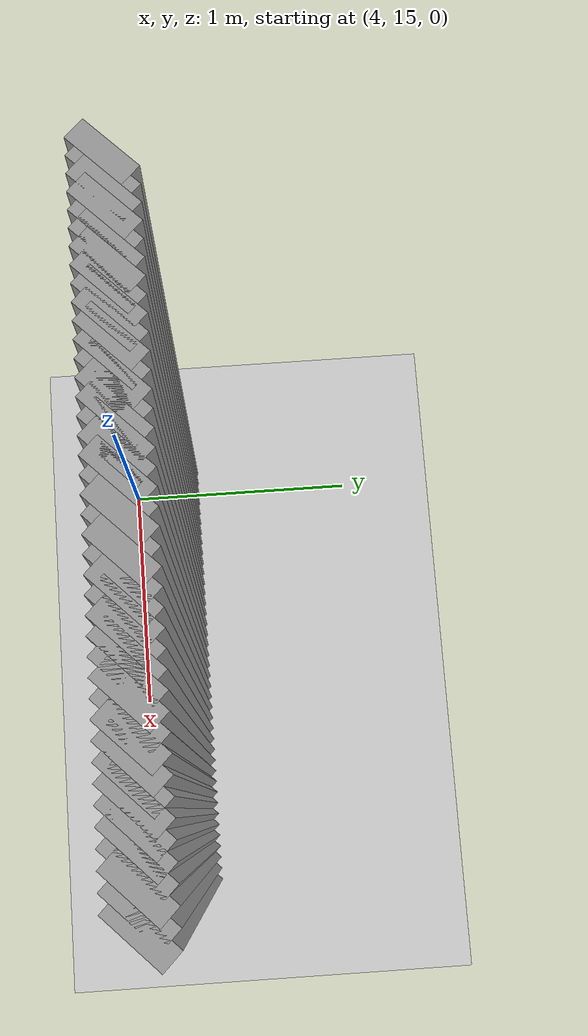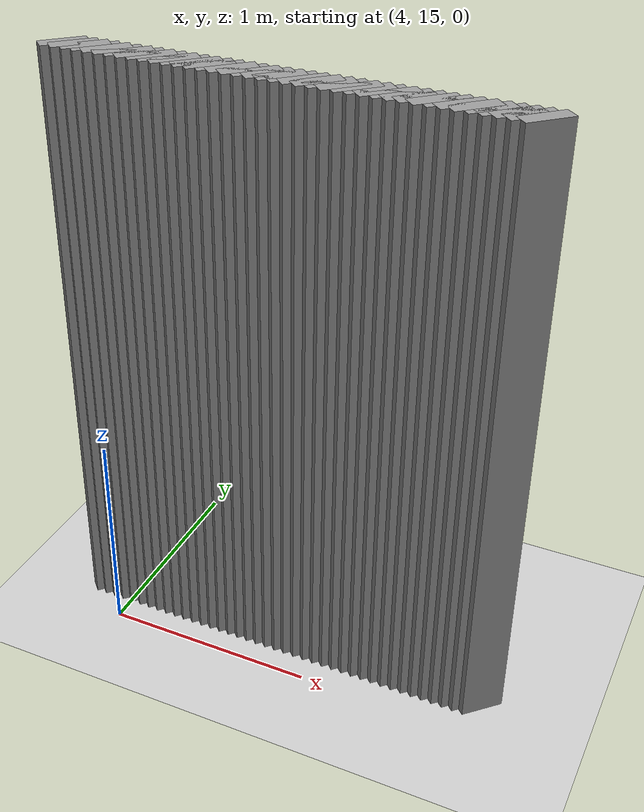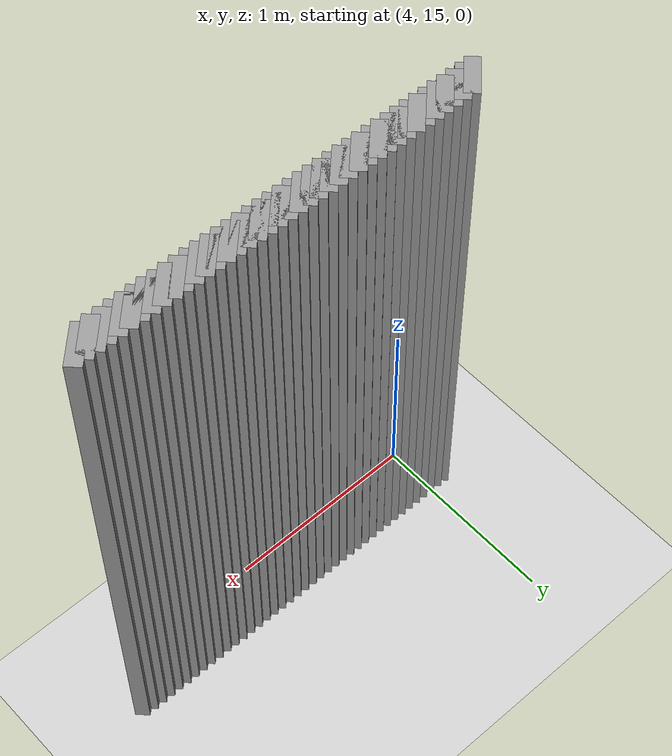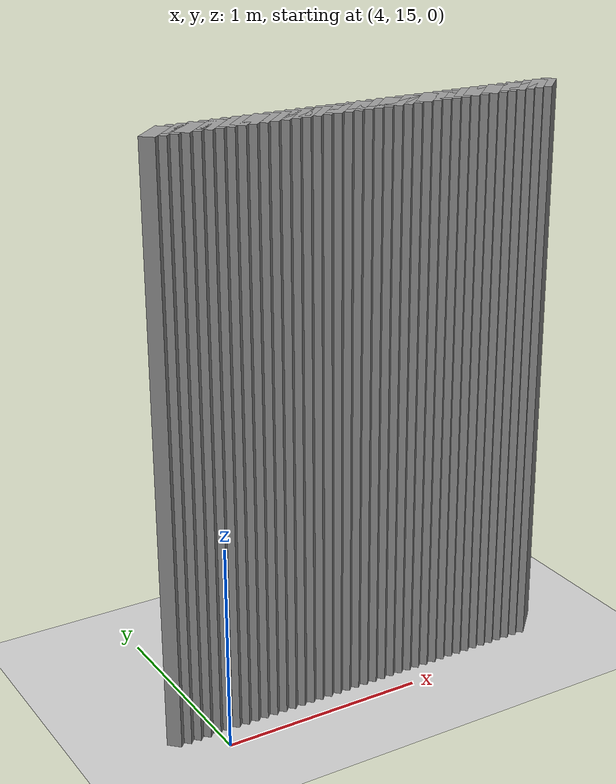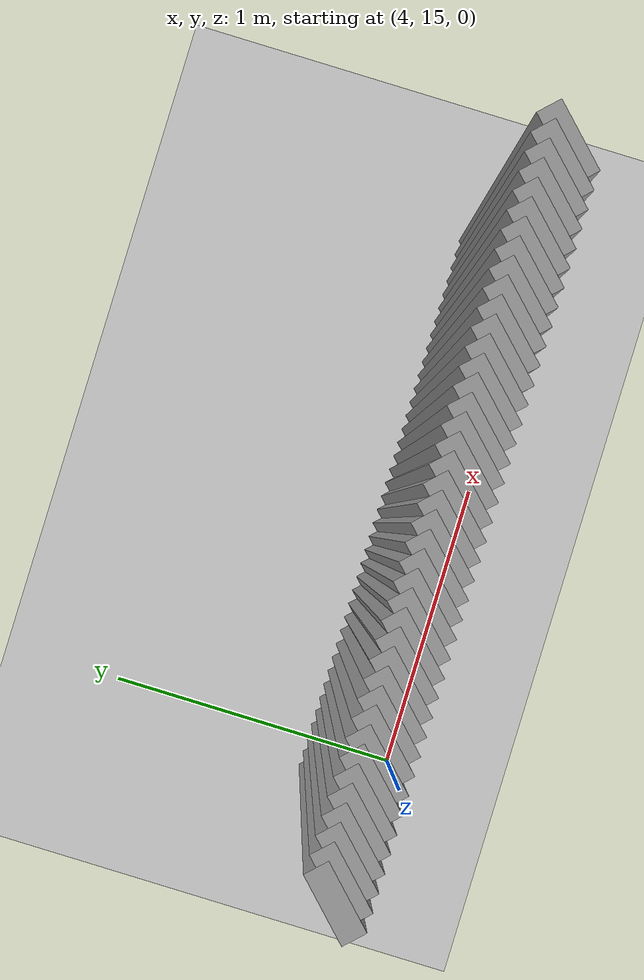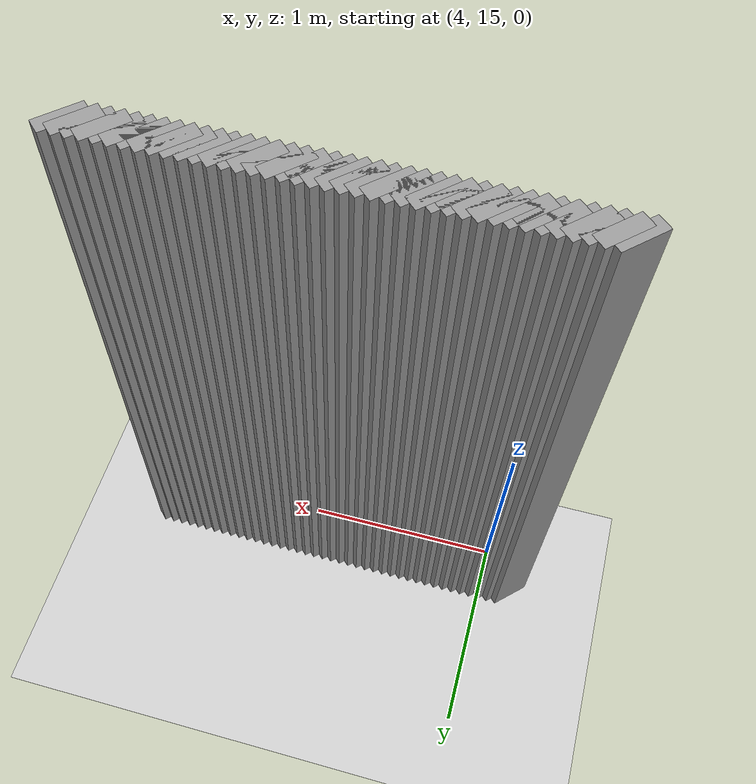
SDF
<sdf version="1.5">
 <world name="default">
  <include><uri>model://ground_plane</uri></include>
  <include><uri>model://sun</uri></include>
  <model name="grey_wall_1497">
   <static>1</static>
   <link name="link">
    <pose>3.85 15.2  1.4 0 0 -0.785398163397</pose>
    <collision name="collision"><geometry><box><size>0.0707106781187 .2  2.8</size></box></geometry></collision>
    <visual name="visual">
     <cast_shadows>0</cast_shadows>
     <geometry><box><size>0.0707106781187 .2  2.8</size></box></geometry>
     <material>
      <script>
       <uri>model://grey_wall/materials/scripts</uri>
       <uri>model://grey_wall/materials/textures</uri>
       <name>vrc/grey_wall</name>
      </script>
     </material>
    </visual>
   </link>
  </model>
  <model name="grey_wall_1498">
   <static>1</static>
   <link name="link">
    <pose>3.9 15.2  1.4 0 0 -0.785398163397</pose>
    <collision name="collision"><geometry><box><size>0.0707106781187 .2  2.8</size></box></geometry></collision>
    <visual name="visual">
     <cast_shadows>0</cast_shadows>
     <geometry><box><size>0.0707106781187 .2  2.8</size></box></geometry>
     <material>
      <script>
       <uri>model://grey_wall/materials/scripts</uri>
       <uri>model://grey_wall/materials/textures</uri>
       <name>vrc/grey_wall</name>
      </script>
     </material>
    </visual>
   </link>
  </model>
  <model name="grey_wall_1499">
   <static>1</static>
   <link name="link">
    <pose>3.95 15.2  1.4 0 0 -0.785398163397</pose>
    <collision name="collision"><geometry><box><size>0.0707106781187 .2  2.8</size></box></geometry></collision>
    <visual name="visual">
     <cast_shadows>0</cast_shadows>
     <geometry><box><size>0.0707106781187 .2  2.8</size></box></geometry>
     <material>
      <script>
       <uri>model://grey_wall/materials/scripts</uri>
       <uri>model://grey_wall/materials/textures</uri>
       <name>vrc/grey_wall</name>
      </script>
     </material>
    </visual>
   </link>
  </model>
  <model name="grey_wall_1500">
   <static>1</static>
   <link name="link">
    <pose>4.0 15.2  1.4 0 0 -0.785398163397</pose>
    <collision name="collision"><geometry><box><size>0.0707106781187 .2  2.8</size></box></geometry></collision>
    <visual name="visual">
     <cast_shadows>0</cast_shadows>
     <geometry><box><size>0.0707106781187 .2  2.8</size></box></geometry>
     <material>
      <script>
       <uri>model://grey_wall/materials/scripts</uri>
       <uri>model://grey_wall/materials/textures</uri>
       <name>vrc/grey_wall</name>
      </script>
     </material>
    </visual>
   </link>
  </model>
  <model name="grey_wall_1501">
   <static>1</static>
   <link name="link">
    <pose>4.05 15.2  1.4 0 0 -0.785398163397</pose>
    <collision name="collision"><geometry><box><size>0.0707106781187 .2  2.8</size></box></geometry></collision>
    <visual name="visual">
     <cast_shadows>0</cast_shadows>
     <geometry><box><size>0.0707106781187 .2  2.8</size></box></geometry>
     <material>
      <script>
       <uri>model://grey_wall/materials/scripts</uri>
       <uri>model://grey_wall/materials/textures</uri>
       <name>vrc/grey_wall</name>
      </script>
     </material>
    </visual>
   </link>
  </model>
  <model name="grey_wall_1502">
   <static>1</static>
   <link name="link">
    <pose>4.1 15.2  1.4 0 0 -0.785398163397</pose>
    <collision name="collision"><geometry><box><size>0.0707106781187 .2  2.8</size></box></geometry></collision>
    <visual name="visual">
     <cast_shadows>0</cast_shadows>
     <geometry><box><size>0.0707106781187 .2  2.8</size></box></geometry>
     <material>
      <script>
       <uri>model://grey_wall/materials/scripts</uri>
       <uri>model://grey_wall/materials/textures</uri>
       <name>vrc/grey_wall</name>
      </script>
     </material>
    </visual>
   </link>
  </model>
  <model name="grey_wall_1503">
   <static>1</static>
   <link name="link">
    <pose>4.15 15.2  1.4 0 0 -0.785398163397</pose>
    <collision name="collision"><geometry><box><size>0.0707106781187 .2  2.8</size></box></geometry></collision>
    <visual name="visual">
     <cast_shadows>0</cast_shadows>
     <geometry><box><size>0.0707106781187 .2  2.8</size></box></geometry>
     <material>
      <script>
       <uri>model://grey_wall/materials/scripts</uri>
       <uri>model://grey_wall/materials/textures</uri>
       <name>vrc/grey_wall</name>
      </script>
     </material>
    </visual>
   </link>
  </model>
  <model name="grey_wall_1504">
   <static>1</static>
   <link name="link">
    <pose>4.2 15.2  1.4 0 0 -0.785398163397</pose>
    <collision name="collision"><geometry><box><size>0.0707106781187 .2  2.8</size></box></geometry></collision>
    <visual name="visual">
     <cast_shadows>0</cast_shadows>
     <geometry><box><size>0.0707106781187 .2  2.8</size></box></geometry>
     <material>
      <script>
       <uri>model://grey_wall/materials/scripts</uri>
       <uri>model://grey_wall/materials/textures</uri>
       <name>vrc/grey_wall</name>
      </script>
     </material>
    </visual>
   </link>
  </model>
  <model name="grey_wall_1505">
   <static>1</static>
   <link name="link">
    <pose>4.25 15.2  1.4 0 0 -0.785398163397</pose>
    <collision name="collision"><geometry><box><size>0.0707106781187 .2  2.8</size></box></geometry></collision>
    <visual name="visual">
     <cast_shadows>0</cast_shadows>
     <geometry><box><size>0.0707106781187 .2  2.8</size></box></geometry>
     <material>
      <script>
       <uri>model://grey_wall/materials/scripts</uri>
       <uri>model://grey_wall/materials/textures</uri>
       <name>vrc/grey_wall</name>
      </script>
     </material>
    </visual>
   </link>
  </model>
  <model name="grey_wall_1506">
   <static>1</static>
   <link name="link">
    <pose>4.3 15.2  1.4 0 0 -0.785398163397</pose>
    <collision name="collision"><geometry><box><size>0.0707106781187 .2  2.8</size></box></geometry></collision>
    <visual name="visual">
     <cast_shadows>0</cast_shadows>
     <geometry><box><size>0.0707106781187 .2  2.8</size></box></geometry>
     <material>
      <script>
       <uri>model://grey_wall/materials/scripts</uri>
       <uri>model://grey_wall/materials/textures</uri>
       <name>vrc/grey_wall</name>
      </script>
     </material>
    </visual>
   </link>
  </model>
  <model name="grey_wall_1507">
   <static>1</static>
   <link name="link">
    <pose>4.35 15.2  1.4 0 0 -0.785398163397</pose>
    <collision name="collision"><geometry><box><size>0.0707106781187 .2  2.8</size></box></geometry></collision>
    <visual name="visual">
     <cast_shadows>0</cast_shadows>
     <geometry><box><size>0.0707106781187 .2  2.8</size></box></geometry>
     <material>
      <script>
       <uri>model://grey_wall/materials/scripts</uri>
       <uri>model://grey_wall/materials/textures</uri>
       <name>vrc/grey_wall</name>
      </script>
     </material>
    </visual>
   </link>
  </model>
  <model name="grey_wall_1508">
   <static>1</static>
   <link name="link">
    <pose>4.4 15.2  1.4 0 0 -0.785398163397</pose>
    <collision name="collision"><geometry><box><size>0.0707106781187 .2  2.8</size></box></geometry></collision>
    <visual name="visual">
     <cast_shadows>0</cast_shadows>
     <geometry><box><size>0.0707106781187 .2  2.8</size></box></geometry>
     <material>
      <script>
       <uri>model://grey_wall/materials/scripts</uri>
       <uri>model://grey_wall/materials/textures</uri>
       <name>vrc/grey_wall</name>
      </script>
     </material>
    </visual>
   </link>
  </model>
  <model name="grey_wall_1509">
   <static>1</static>
   <link name="link">
    <pose>4.45 15.2  1.4 0 0 -0.785398163397</pose>
    <collision name="collision"><geometry><box><size>0.0707106781187 .2  2.8</size></box></geometry></collision>
    <visual name="visual">
     <cast_shadows>0</cast_shadows>
     <geometry><box><size>0.0707106781187 .2  2.8</size></box></geometry>
     <material>
      <script>
       <uri>model://grey_wall/materials/scripts</uri>
       <uri>model://grey_wall/materials/textures</uri>
       <name>vrc/grey_wall</name>
      </script>
     </material>
    </visual>
   </link>
  </model>
  <model name="grey_wall_1510">
   <static>1</static>
   <link name="link">
    <pose>4.5 15.2  1.4 0 0 -0.785398163397</pose>
    <collision name="collision"><geometry><box><size>0.0707106781187 .2  2.8</size></box></geometry></collision>
    <visual name="visual">
     <cast_shadows>0</cast_shadows>
     <geometry><box><size>0.0707106781187 .2  2.8</size></box></geometry>
     <material>
      <script>
       <uri>model://grey_wall/materials/scripts</uri>
       <uri>model://grey_wall/materials/textures</uri>
       <name>vrc/grey_wall</name>
      </script>
     </material>
    </visual>
   </link>
  </model>
  <model name="grey_wall_1511">
   <static>1</static>
   <link name="link">
    <pose>4.55 15.2  1.4 0 0 -0.785398163397</pose>
    <collision name="collision"><geometry><box><size>0.0707106781187 .2  2.8</size></box></geometry></collision>
    <visual name="visual">
     <cast_shadows>0</cast_shadows>
     <geometry><box><size>0.0707106781187 .2  2.8</size></box></geometry>
     <material>
      <script>
       <uri>model://grey_wall/materials/scripts</uri>
       <uri>model://grey_wall/materials/textures</uri>
       <name>vrc/grey_wall</name>
      </script>
     </material>
    </visual>
   </link>
  </model>
  <model name="grey_wall_1512">
   <static>1</static>
   <link name="link">
    <pose>4.6 15.2  1.4 0 0 -0.785398163397</pose>
    <collision name="collision"><geometry><box><size>0.0707106781187 .2  2.8</size></box></geometry></collision>
    <visual name="visual">
     <cast_shadows>0</cast_shadows>
     <geometry><box><size>0.0707106781187 .2  2.8</size></box></geometry>
     <material>
      <script>
       <uri>model://grey_wall/materials/scripts</uri>
       <uri>model://grey_wall/materials/textures</uri>
       <name>vrc/grey_wall</name>
      </script>
     </material>
    </visual>
   </link>
  </model>
  <model name="grey_wall_1513">
   <static>1</static>
   <link name="link">
    <pose>4.65 15.2  1.4 0 0 -0.785398163397</pose>
    <collision name="collision"><geometry><box><size>0.0707106781187 .2  2.8</size></box></geometry></collision>
    <visual name="visual">
     <cast_shadows>0</cast_shadows>
     <geometry><box><size>0.0707106781187 .2  2.8</size></box></geometry>
     <material>
      <script>
       <uri>model://grey_wall/materials/scripts</uri>
       <uri>model://grey_wall/materials/textures</uri>
       <name>vrc/grey_wall</name>
      </script>
     </material>
    </visual>
   </link>
  </model>
  <model name="grey_wall_1514">
   <static>1</static>
   <link name="link">
    <pose>4.7 15.2  1.4 0 0 -0.785398163397</pose>
    <collision name="collision"><geometry><box><size>0.0707106781187 .2  2.8</size></box></geometry></collision>
    <visual name="visual">
     <cast_shadows>0</cast_shadows>
     <geometry><box><size>0.0707106781187 .2  2.8</size></box></geometry>
     <material>
      <script>
       <uri>model://grey_wall/materials/scripts</uri>
       <uri>model://grey_wall/materials/textures</uri>
       <name>vrc/grey_wall</name>
      </script>
     </material>
    </visual>
   </link>
  </model>
  <model name="grey_wall_1515">
   <static>1</static>
   <link name="link">
    <pose>4.75 15.2  1.4 0 0 -0.785398163397</pose>
    <collision name="collision"><geometry><box><size>0.0707106781187 .2  2.8</size></box></geometry></collision>
    <visual name="visual">
     <cast_shadows>0</cast_shadows>
     <geometry><box><size>0.0707106781187 .2  2.8</size></box></geometry>
     <material>
      <script>
       <uri>model://grey_wall/materials/scripts</uri>
       <uri>model://grey_wall/materials/textures</uri>
       <name>vrc/grey_wall</name>
      </script>
     </material>
    </visual>
   </link>
  </model>
  <model name="grey_wall_1516">
   <static>1</static>
   <link name="link">
    <pose>4.8 15.2  1.4 0 0 -0.785398163397</pose>
    <collision name="collision"><geometry><box><size>0.0707106781187 .2  2.8</size></box></geometry></collision>
    <visual name="visual">
     <cast_shadows>0</cast_shadows>
     <geometry><box><size>0.0707106781187 .2  2.8</size></box></geometry>
     <material>
      <script>
       <uri>model://grey_wall/materials/scripts</uri>
       <uri>model://grey_wall/materials/textures</uri>
       <name>vrc/grey_wall</name>
      </script>
     </material>
    </visual>
   </link>
  </model>
  <model name="grey_wall_1517">
   <static>1</static>
   <link name="link">
    <pose>4.85 15.2  1.4 0 0 -0.785398163397</pose>
    <collision name="collision"><geometry><box><size>0.0707106781187 .2  2.8</size></box></geometry></collision>
    <visual name="visual">
     <cast_shadows>0</cast_shadows>
     <geometry><box><size>0.0707106781187 .2  2.8</size></box></geometry>
     <material>
      <script>
       <uri>model://grey_wall/materials/scripts</uri>
       <uri>model://grey_wall/materials/textures</uri>
       <name>vrc/grey_wall</name>
      </script>
     </material>
    </visual>
   </link>
  </model>
  <model name="grey_wall_1518">
   <static>1</static>
   <link name="link">
    <pose>4.9 15.2  1.4 0 0 -0.785398163397</pose>
    <collision name="collision"><geometry><box><size>0.0707106781187 .2  2.8</size></box></geometry></collision>
    <visual name="visual">
     <cast_shadows>0</cast_shadows>
     <geometry><box><size>0.0707106781187 .2  2.8</size></box></geometry>
     <material>
      <script>
       <uri>model://grey_wall/materials/scripts</uri>
       <uri>model://grey_wall/materials/textures</uri>
       <name>vrc/grey_wall</name>
      </script>
     </material>
    </visual>
   </link>
  </model>
  <model name="grey_wall_1519">
   <static>1</static>
   <link name="link">
    <pose>4.95 15.2  1.4 0 0 -0.785398163397</pose>
    <collision name="collision"><geometry><box><size>0.0707106781187 .2  2.8</size></box></geometry></collision>
    <visual name="visual">
     <cast_shadows>0</cast_shadows>
     <geometry><box><size>0.0707106781187 .2  2.8</size></box></geometry>
     <material>
      <script>
       <uri>model://grey_wall/materials/scripts</uri>
       <uri>model://grey_wall/materials/textures</uri>
       <name>vrc/grey_wall</name>
      </script>
     </material>
    </visual>
   </link>
  </model>
  <model name="grey_wall_1520">
   <static>1</static>
   <link name="link">
    <pose>5.0 15.2  1.4 0 0 -0.785398163397</pose>
    <collision name="collision"><geometry><box><size>0.0707106781187 .2  2.8</size></box></geometry></collision>
    <visual name="visual">
     <cast_shadows>0</cast_shadows>
     <geometry><box><size>0.0707106781187 .2  2.8</size></box></geometry>
     <material>
      <script>
       <uri>model://grey_wall/materials/scripts</uri>
       <uri>model://grey_wall/materials/textures</uri>
       <name>vrc/grey_wall</name>
      </script>
     </material>
    </visual>
   </link>
  </model>
  <model name="grey_wall_1521">
   <static>1</static>
   <link name="link">
    <pose>5.05 15.2  1.4 0 0 -0.785398163397</pose>
    <collision name="collision"><geometry><box><size>0.0707106781187 .2  2.8</size></box></geometry></collision>
    <visual name="visual">
     <cast_shadows>0</cast_shadows>
     <geometry><box><size>0.0707106781187 .2  2.8</size></box></geometry>
     <material>
      <script>
       <uri>model://grey_wall/materials/scripts</uri>
       <uri>model://grey_wall/materials/textures</uri>
       <name>vrc/grey_wall</name>
      </script>
     </material>
    </visual>
   </link>
  </model>
  <model name="grey_wall_1522">
   <static>1</static>
   <link name="link">
    <pose>5.1 15.2  1.4 0 0 -0.785398163397</pose>
    <collision name="collision"><geometry><box><size>0.0707106781187 .2  2.8</size></box></geometry></collision>
    <visual name="visual">
     <cast_shadows>0</cast_shadows>
     <geometry><box><size>0.0707106781187 .2  2.8</size></box></geometry>
     <material>
      <script>
       <uri>model://grey_wall/materials/scripts</uri>
       <uri>model://grey_wall/materials/textures</uri>
       <name>vrc/grey_wall</name>
      </script>
     </material>
    </visual>
   </link>
  </model>
  <model name="grey_wall_1523">
   <static>1</static>
   <link name="link">
    <pose>5.15 15.2  1.4 0 0 -0.785398163397</pose>
    <collision name="collision"><geometry><box><size>0.0707106781187 .2  2.8</size></box></geometry></collision>
    <visual name="visual">
     <cast_shadows>0</cast_shadows>
     <geometry><box><size>0.0707106781187 .2  2.8</size></box></geometry>
     <material>
      <script>
       <uri>model://grey_wall/materials/scripts</uri>
       <uri>model://grey_wall/materials/textures</uri>
       <name>vrc/grey_wall</name>
      </script>
     </material>
    </visual>
   </link>
  </model>
  <model name="grey_wall_1524">
   <static>1</static>
   <link name="link">
    <pose>5.2 15.2  1.4 0 0 -0.785398163397</pose>
    <collision name="collision"><geometry><box><size>0.0707106781187 .2  2.8</size></box></geometry></collision>
    <visual name="visual">
     <cast_shadows>0</cast_shadows>
     <geometry><box><size>0.0707106781187 .2  2.8</size></box></geometry>
     <material>
      <script>
       <uri>model://grey_wall/materials/scripts</uri>
       <uri>model://grey_wall/materials/textures</uri>
       <name>vrc/grey_wall</name>
      </script>
     </material>
    </visual>
   </link>
  </model>
  <model name="grey_wall_1525">
   <static>1</static>
   <link name="link">
    <pose>5.25 15.2  1.4 0 0 -0.785398163397</pose>
    <collision name="collision"><geometry><box><size>0.0707106781187 .2  2.8</size></box></geometry></collision>
    <visual name="visual">
     <cast_shadows>0</cast_shadows>
     <geometry><box><size>0.0707106781187 .2  2.8</size></box></geometry>
     <material>
      <script>
       <uri>model://grey_wall/materials/scripts</uri>
       <uri>model://grey_wall/materials/textures</uri>
       <name>vrc/grey_wall</name>
      </script>
     </material>
    </visual>
   </link>
  </model>
  <model name="grey_wall_1526">
   <static>1</static>
   <link name="link">
    <pose>5.3 15.2  1.4 0 0 -0.785398163397</pose>
    <collision name="collision"><geometry><box><size>0.0707106781187 .2  2.8</size></box></geometry></collision>
    <visual name="visual">
     <cast_shadows>0</cast_shadows>
     <geometry><box><size>0.0707106781187 .2  2.8</size></box></geometry>
     <material>
      <script>
       <uri>model://grey_wall/materials/scripts</uri>
       <uri>model://grey_wall/materials/textures</uri>
       <name>vrc/grey_wall</name>
      </script>
     </material>
    </visual>
   </link>
  </model>
  <model name="grey_wall_1527">
   <static>1</static>
   <link name="link">
    <pose>5.35 15.2  1.4 0 0 -0.785398163397</pose>
    <collision name="collision"><geometry><box><size>0.0707106781187 .2  2.8</size></box></geometry></collision>
    <visual name="visual">
     <cast_shadows>0</cast_shadows>
     <geometry><box><size>0.0707106781187 .2  2.8</size></box></geometry>
     <material>
      <script>
       <uri>model://grey_wall/materials/scripts</uri>
       <uri>model://grey_wall/materials/textures</uri>
       <name>vrc/grey_wall</name>
      </script>
     </material>
    </visual>
   </link>
  </model>
  <model name="grey_wall_1528">
   <static>1</static>
   <link name="link">
    <pose>5.4 15.2  1.4 0 0 -0.785398163397</pose>
    <collision name="collision"><geometry><box><size>0.0707106781187 .2  2.8</size></box></geometry></collision>
    <visual name="visual">
     <cast_shadows>0</cast_shadows>
     <geometry><box><size>0.0707106781187 .2  2.8</size></box></geometry>
     <material>
      <script>
       <uri>model://grey_wall/materials/scripts</uri>
       <uri>model://grey_wall/materials/textures</uri>
       <name>vrc/grey_wall</name>
      </script>
     </material>
    </visual>
   </link>
  </model>
  <model name="grey_wall_1529">
   <static>1</static>
   <link name="link">
    <pose>5.45 15.2  1.4 0 0 -0.785398163397</pose>
    <collision name="collision"><geometry><box><size>0.0707106781187 .2  2.8</size></box></geometry></collision>
    <visual name="visual">
     <cast_shadows>0</cast_shadows>
     <geometry><box><size>0.0707106781187 .2  2.8</size></box></geometry>
     <material>
      <script>
       <uri>model://grey_wall/materials/scripts</uri>
       <uri>model://grey_wall/materials/textures</uri>
       <name>vrc/grey_wall</name>
      </script>
     </material>
    </visual>
   </link>
  </model>
  <model name="grey_wall_1530">
   <static>1</static>
   <link name="link">
    <pose>5.5 15.2  1.4 0 0 -0.785398163397</pose>
    <collision name="collision"><geometry><box><size>0.0707106781187 .2  2.8</size></box></geometry></collision>
    <visual name="visual">
     <cast_shadows>0</cast_shadows>
     <geometry><box><size>0.0707106781187 .2  2.8</size></box></geometry>
     <material>
      <script>
       <uri>model://grey_wall/materials/scripts</uri>
       <uri>model://grey_wall/materials/textures</uri>
       <name>vrc/grey_wall</name>
      </script>
     </material>
    </visual>
   </link>
  </model>
  <model name="grey_wall_1531">
   <static>1</static>
   <link name="link">
    <pose>5.55 15.2  1.4 0 0 -0.785398163397</pose>
    <collision name="collision"><geometry><box><size>0.0707106781187 .2  2.8</size></box></geometry></collision>
    <visual name="visual">
     <cast_shadows>0</cast_shadows>
     <geometry><box><size>0.0707106781187 .2  2.8</size></box></geometry>
     <material>
      <script>
       <uri>model://grey_wall/materials/scripts</uri>
       <uri>model://grey_wall/materials/textures</uri>
       <name>vrc/grey_wall</name>
      </script>
     </material>
    </visual>
   </link>
  </model>
  <model name="grey_wall_1532">
   <static>1</static>
   <link name="link">
    <pose>5.6 15.2  1.4 0 0 -0.785398163397</pose>
    <collision name="collision"><geometry><box><size>0.0707106781187 .2  2.8</size></box></geometry></collision>
    <visual name="visual">
     <cast_shadows>0</cast_shadows>
     <geometry><box><size>0.0707106781187 .2  2.8</size></box></geometry>
     <material>
      <script>
       <uri>model://grey_wall/materials/scripts</uri>
       <uri>model://grey_wall/materials/textures</uri>
       <name>vrc/grey_wall</name>
      </script>
     </material>
    </visual>
   </link>
  </model>
  <model name="grey_wall_1533">
   <static>1</static>
   <link name="link">
    <pose>5.65 15.2  1.4 0 0 -0.785398163397</pose>
    <collision name="collision"><geometry><box><size>0.0707106781187 .2  2.8</size></box></geometry></collision>
    <visual name="visual">
     <cast_shadows>0</cast_shadows>
     <geometry><box><size>0.0707106781187 .2  2.8</size></box></geometry>
     <material>
      <script>
       <uri>model://grey_wall/materials/scripts</uri>
       <uri>model://grey_wall/materials/textures</uri>
       <name>vrc/grey_wall</name>
      </script>
     </material>
    </visual>
   </link>
  </model>
  <model name="grey_wall_1534">
   <static>1</static>
   <link name="link">
    <pose>5.7 15.2  1.4 0 0 -0.785398163397</pose>
    <collision name="collision"><geometry><box><size>0.0707106781187 .2  2.8</size></box></geometry></collision>
    <visual name="visual">
     <cast_shadows>0</cast_shadows>
     <geometry><box><size>0.0707106781187 .2  2.8</size></box></geometry>
     <material>
      <script>
       <uri>model://grey_wall/materials/scripts</uri>
       <uri>model://grey_wall/materials/textures</uri>
       <name>vrc/grey_wall</name>
      </script>
     </material>
    </visual>
   </link>
  </model>
  <model name="grey_wall_1535">
   <static>1</static>
   <link name="link">
    <pose>5.75 15.2  1.4 0 0 -0.785398163397</pose>
    <collision name="collision"><geometry><box><size>0.0707106781187 .2  2.8</size></box></geometry></collision>
    <visual name="visual">
     <cast_shadows>0</cast_shadows>
     <geometry><box><size>0.0707106781187 .2  2.8</size></box></geometry>
     <material>
      <script>
       <uri>model://grey_wall/materials/scripts</uri>
       <uri>model://grey_wall/materials/textures</uri>
       <name>vrc/grey_wall</name>
      </script>
     </material>
    </visual>
   </link>
  </model>
  <model name="grey_wall_1536">
   <static>1</static>
   <link name="link">
    <pose>5.8 15.2  1.4 0 0 -0.785398163397</pose>
    <collision name="collision"><geometry><box><size>0.0707106781187 .2  2.8</size></box></geometry></collision>
    <visual name="visual">
     <cast_shadows>0</cast_shadows>
     <geometry><box><size>0.0707106781187 .2  2.8</size></box></geometry>
     <material>
      <script>
       <uri>model://grey_wall/materials/scripts</uri>
       <uri>model://grey_wall/materials/textures</uri>
       <name>vrc/grey_wall</name>
      </script>
     </material>
    </visual>
   </link>
  </model>
 </world>
</sdf>
